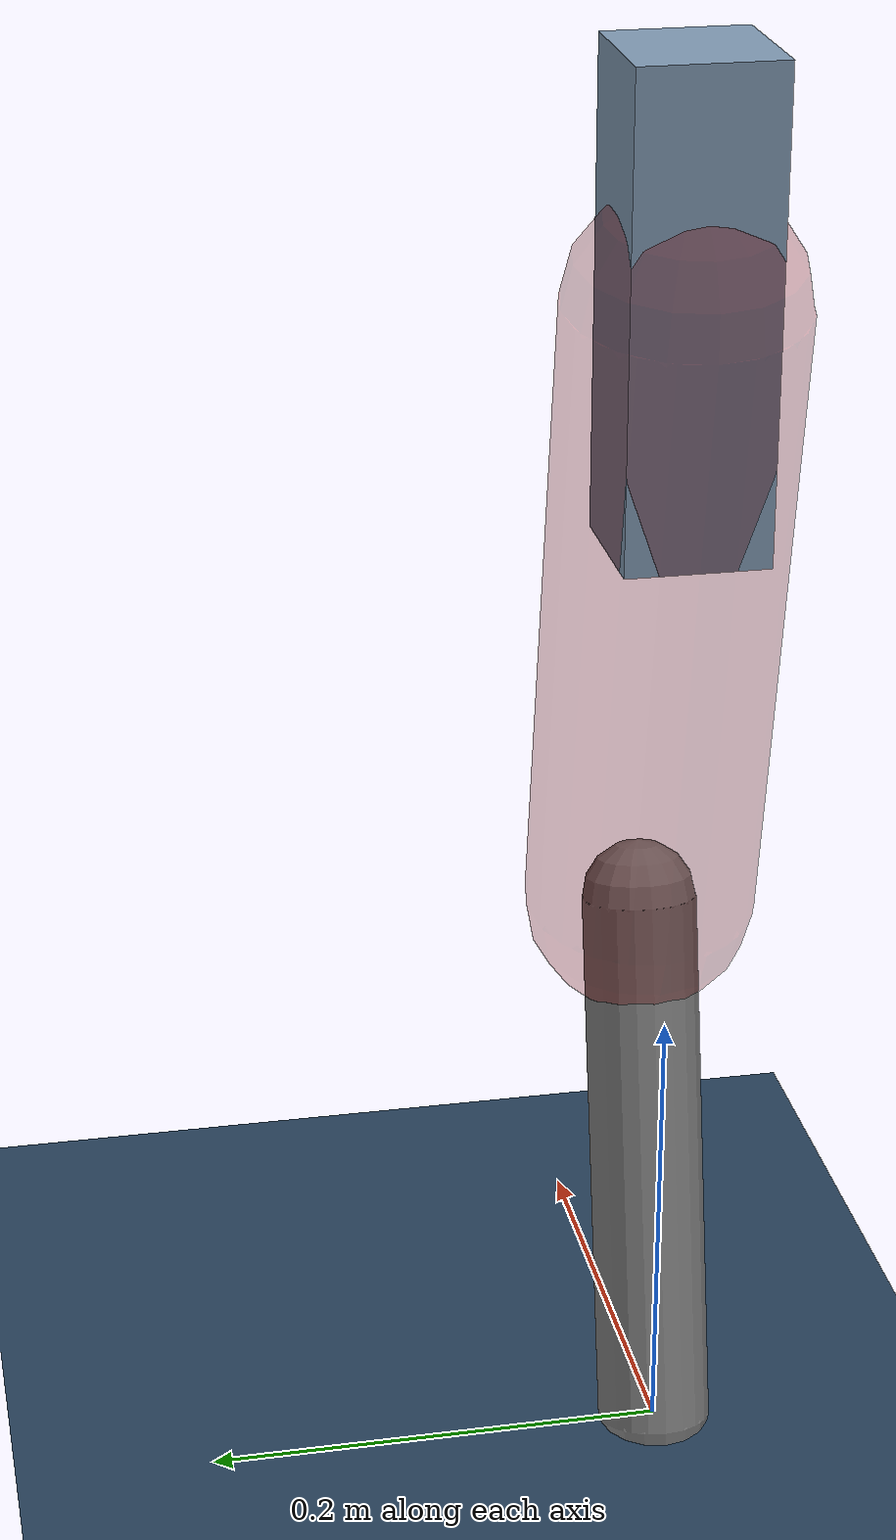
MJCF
<mujoco model="Hopper2D">
	<compiler inertiafromgeom="true" angle="radian" />
	<option timestep="0.001" integrator="implicit" cone="elliptic" solver="Newton" tolerance="1e-10" />

	<default>
		<geom contype="1" conaffinity="1" condim="3" friction="2 0.005 0.0001" solref="0.005 1" />
		<joint limited="true" damping="0.1" />
	</default>

	<asset>
		<texture name="skybox" type="skybox" builtin="gradient" rgb1=".4 .6 .8" rgb2="0 0 0" width="800" height="800" />
		<texture name="grid" type="2d" builtin="checker" rgb1=".1 .2 .3" rgb2=".2 .3 .4" width="300" height="300" mark="edge" markrgb=".2 .3 .4" />
		<material name="ground" texture="grid" texrepeat="1 1" texuniform="true" reflectance="0.1" />
		<material name="leg" rgba="0.5 0.6 0.7 1" />
	</asset>

	<worldbody>

		<geom name="floor" type="plane" size="5 5 0.25" material="ground" />

		<light directional="false" diffuse="0.8 0.8 0.8" specular="0.3 0.3 0.3" pos="0 0 2" dir="0 0 -1" />
		<light mode="targetbodycom" target="base" directional="false" diffuse="0.8 0.8 0.8" specular="0.3 0.3 0.3" pos="0 0 2" dir="0 0 -1" />

		<camera name="fixed" pos="0 -2 1" xyaxes="1 0 0 0 0 1" />
		<camera name="tracking" mode="trackcom" pos="0 -3 1" />

		<body name="root" pos="0 0 0.5186159744611889">
			<joint name="slide_x" type="slide" axis="1 0 0" range="-100 100" />
			<joint name="slide_z" type="slide" axis="0 0 1" range="0 10" />

			<body name="base" pos="0 0 0">
				<geom name="torso" type="box" size="0.03 0.03 0.1" mass="1.9169999999999998" material="leg" />

				<body name="link1" pos="0 0 0" euler="0 1.3916378971111267 0">
					<joint type="hinge" axis="0 -1 0" pos="0 0 0" name="hinge1" limited="true" range="-3.14 3.14" stiffness="0" damping="0.1" />
					<geom name="thigh" type="capsule" fromto="0 0 0 0.2861139084953366 0 0" size="0.05" rgba="0.5 0 0 0.3" mass="0.9514075529374088" />

					<body name="link2" pos="0.2861139084953366 0 0" euler="0 0.3909885867603332 0">
						<joint type="hinge" axis="0 -1 0" pos="0 0 0" name="hinge2" limited="true" range="-3.14 3.14" stiffness="0" damping="0.1" />
						<geom name="shank" type="capsule" fromto="0 0 0 0.24250206596585228 0 0" size="0.025" mass="0.4363016527726818" />

					</body>
				</body>
			</body>
		</body>
	</worldbody>

	<actuator>
		<motor name="torque1" joint="hinge1" ctrlrange="-78.31347126092534 78.31347126092534" ctrllimited="true" gear="1" />
		<motor name="torque2" joint="hinge2" ctrlrange="-77.98078771068575 77.98078771068575" ctrllimited="true" gear="1" />
	</actuator>
</mujoco>
